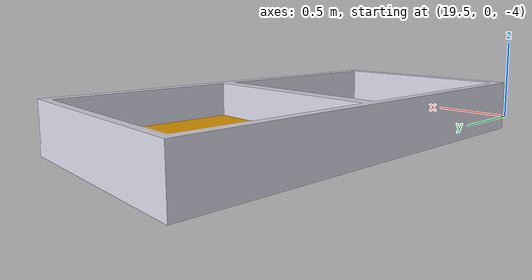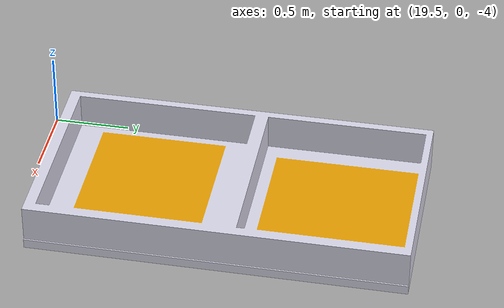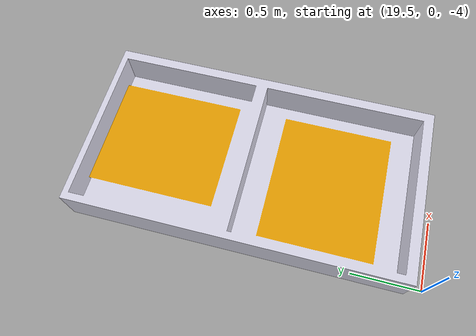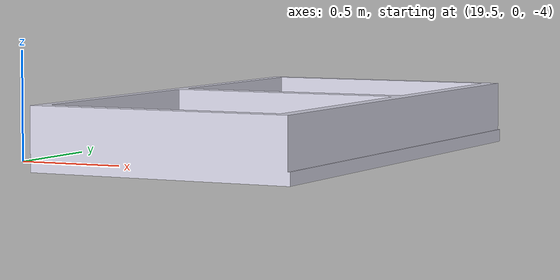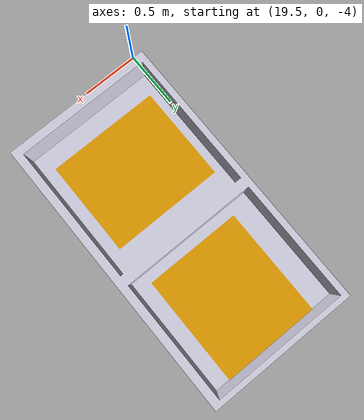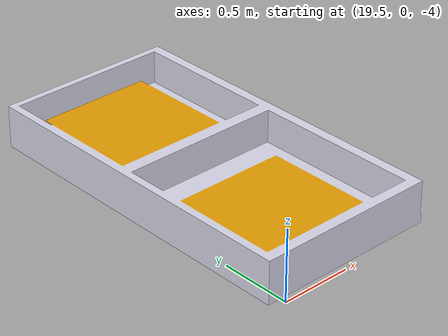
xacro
<?xml version="1.0"?>
<robot name="bin_2" xmlns:xacro="http://www.ros.org/wiki/xacro">

<!-- Introducir meshes -->
<xacro:property name="visual_mesh_file" value="file://$(find uuv_world)/models/meshes/bin02.dae" />

<link name="bin2_base">
    <visual>
        <origin xyz="22.180420 4.643661 -4.0" rpy="0.0 0.0 -1.57"/>
        <geometry>
            <mesh filename="${visual_mesh_file}" scale="1 1 1" />
        </geometry>
    </visual>

        <!-- Se deben cambiar los parametros reales-->
    <collision>
      <origin xyz="22.180420 4.643661 -4.0" rpy="0.0 0.0 -1.57"/>
      <geometry>
        <mesh filename="${visual_mesh_file}" scale="1 1 1" />
      </geometry>
    </collision>

    <inertial>
      <origin xyz="22.180420 4.643661 -4.0" rpy="0.0 0.0 -1.57"/>
      <mass value="1"/>
      <inertia
        ixx="1.0" ixy="0.0" ixz="0.0"
        iyy="1.0" iyz="0.0"
        izz="1.0"/>
    </inertial>

</link>

</robot>
